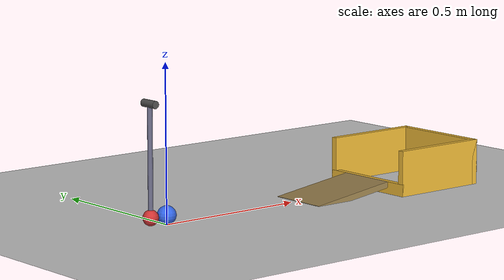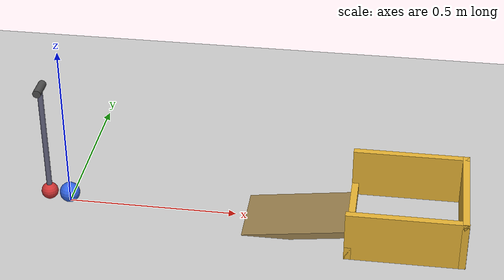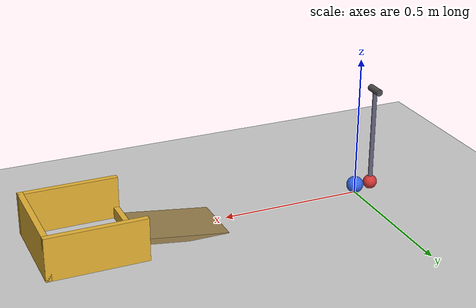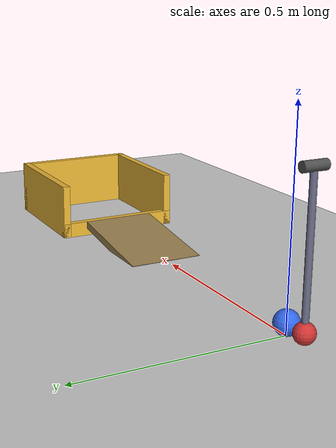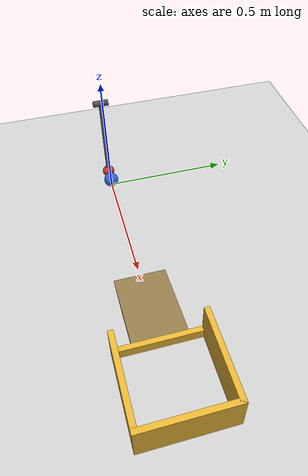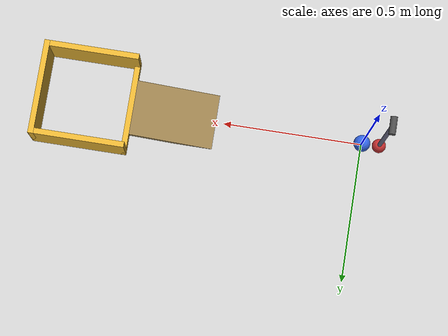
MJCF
<mujoco model="pendulum_ball_cup">
  <compiler angle="degree"/>
  <option timestep="0.002" gravity="0 0 -9.81"/>

  <worldbody>
    <light name="sun" pos="0.5 -1 3" dir="0 0.3 -1" directional="true"/>
    <geom name="floor" type="plane" size="3 3 0.1" rgba="0.8 0.8 0.8 1"/>

    <!-- visual-only pivot marker -->
    <geom name="pivot_marker" type="cylinder" pos="-0.061 0 0.38" euler="90 0 0" size="0.012 0.03" contype="0" conaffinity="0" rgba="0.3 0.3 0.3 1"/>

    <!-- pendulum: pivot 0.35 m above the bob's lowest point; bob at bottom touches ball at centre height -->
    <body name="pendulum" pos="-0.061 0 0.38">
      <joint name="pendulum_hinge" type="hinge" axis="0 1 0" pos="0 0 0"/>
      <geom name="pendulum_rod" type="capsule" fromto="0 0 0 0 0 -0.325" size="0.008" mass="0.05" rgba="0.4 0.4 0.5 1"/>
      <geom name="pendulum_bob" type="sphere" pos="0 0 -0.35" size="0.025" mass="2.0" rgba="0.8 0.2 0.2 1"/>
    </body>

    <!-- ball resting on the floor at the origin -->
    <body name="ball" pos="0 0 0.03">
      <freejoint name="ball_free"/>
      <geom name="ball" type="sphere" size="0.03" mass="0.1" rgba="0.2 0.4 0.9 1"/>
    </body>

    <!-- cup centred 1 m from the ball's start; ramp leads up to a 4 cm entry rim -->
    <body name="cup" pos="1 0 0">
      <geom name="cup_ramp" type="box" pos="-0.31868 0 0.01009" euler="0 -7.595 0" size="0.15133 0.1 0.01" rgba="0.6 0.5 0.3 1"/>
      <geom name="cup_wall_near" type="box" pos="-0.16 0 0.02" size="0.01 0.17 0.02" rgba="0.9 0.7 0.2 1"/>
      <geom name="cup_wall_far" type="box" pos="0.16 0 0.075" size="0.01 0.17 0.075" rgba="0.9 0.7 0.2 1"/>
      <geom name="cup_wall_left" type="box" pos="0 0.16 0.075" size="0.17 0.01 0.075" rgba="0.9 0.7 0.2 1"/>
      <geom name="cup_wall_right" type="box" pos="0 -0.16 0.075" size="0.17 0.01 0.075" rgba="0.9 0.7 0.2 1"/>
    </body>
  </worldbody>

  <keyframe>
    <!-- pendulum held horizontal (bob at x = -0.411), ball at rest -->
    <key name="start" qpos="1.5708 0 0 0.03 1 0 0 0" qvel="0 0 0 0 0 0 0"/>
  </keyframe>
</mujoco>
